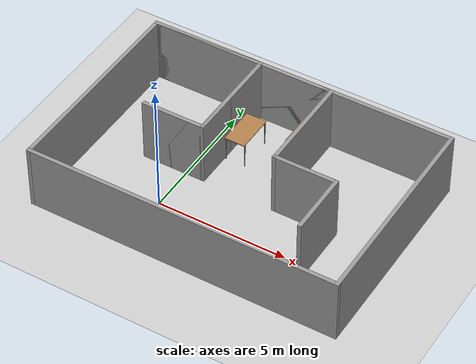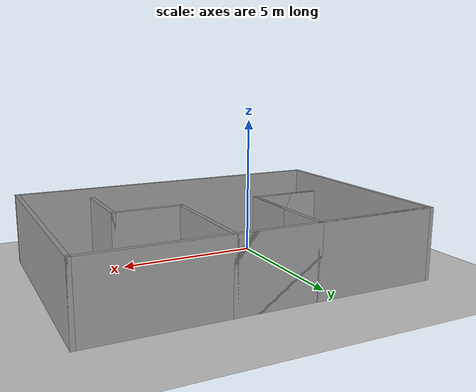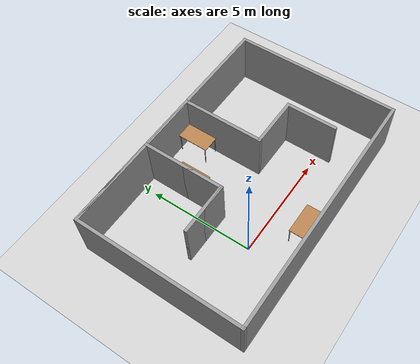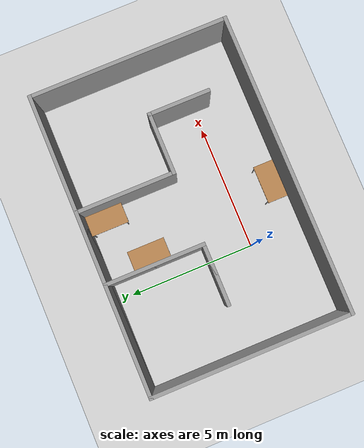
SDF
<sdf version="1.7">
 <world name="default">
  <light name="sun" type="directional">
   <pose>0 0 10 0 -0 0</pose>
   <diffuse>0.8 0.8 0.8 1</diffuse>
   <specular>0.2 0.2 0.2 1</specular>
   <attenuation>
    <range>1000</range>
    <constant>0.9</constant>
    <linear>0.01</linear>
    <quadratic>0.001</quadratic>
   </attenuation>
   <direction>-0.5 0.1 -0.9</direction>
   <spot><inner_angle>0</inner_angle><outer_angle>0</outer_angle><falloff>0</falloff></spot>
  </light>
  <model name="ground_plane">
   <static>1</static>
   <link name="link">
    <collision name="collision">
     <geometry><plane><normal>0 0 1</normal><size>100 100</size></plane></geometry>
     <surface>
      <contact><collide_bitmask>65535</collide_bitmask></contact>
      <friction><ode><mu>100</mu><mu2>50</mu2></ode></friction>
     </surface>
    </collision>
    <visual name="visual">
     <cast_shadows>0</cast_shadows>
     <geometry><plane><normal>0 0 1</normal><size>100 100</size></plane></geometry>
     <material>
      <script><uri>file://media/materials/scripts/gazebo.material</uri><name>Gazebo/Grey</name></script>
     </material>
    </visual>
   </link>
  </model>
  <gravity>0 0 -9.8</gravity>
  <magnetic_field>6e-06 2.3e-05 -4.2e-05</magnetic_field>
  <atmosphere type="adiabatic"/>
  <physics type="ode">
   <max_step_size>0.001</max_step_size>
   <real_time_factor>1</real_time_factor>
   <real_time_update_rate>1000</real_time_update_rate>
  </physics>
  <scene><ambient>0.4 0.4 0.4 1</ambient><background>0.7 0.7 0.7 1</background><shadows>1</shadows></scene>
  <audio><device>default</device></audio>
  <spherical_coordinates>
   <surface_model>EARTH_WGS84</surface_model>
   <latitude_deg>0</latitude_deg>
   <longitude_deg>0</longitude_deg>
   <elevation>0</elevation>
   <heading_deg>0</heading_deg>
  </spherical_coordinates>
  <model name="home">
   <pose>2.25 2.25 0 0 -0 0</pose>
   <link name="Wall_10">
    <collision name="Wall_10_Collision">
     <geometry><box><size>12 0.15 2.5</size></box></geometry>
     <pose>0 0 1.25 0 -0 0</pose>
    </collision>
    <visual name="Wall_10_Visual">
     <pose>0 0 1.25 0 -0 0</pose>
     <geometry><box><size>12 0.15 2.5</size></box></geometry>
     <material>
      <script><uri>file://media/materials/scripts/gazebo.material</uri><name>Gazebo/Grey</name></script>
      <ambient>1 1 1 1</ambient>
     </material>
     <meta><layer>0</layer></meta>
    </visual>
    <pose>0 3.3875 0 0 -0 0</pose>
   </link>
   <link name="Wall_11">
    <collision name="Wall_11_Collision">
     <geometry><box><size>8 0.15 2.5</size></box></geometry>
     <pose>0 0 1.25 0 -0 0</pose>
    </collision>
    <visual name="Wall_11_Visual">
     <pose>0 0 1.25 0 -0 0</pose>
     <geometry><box><size>8 0.15 2.5</size></box></geometry>
     <material>
      <script><uri>file://media/materials/scripts/gazebo.material</uri><name>Gazebo/Grey</name></script>
      <ambient>1 1 1 1</ambient>
     </material>
     <meta><layer>0</layer></meta>
    </visual>
    <pose>5.925 -0.537499 0 0 -0 -1.5708</pose>
   </link>
   <link name="Wall_12">
    <collision name="Wall_12_Collision">
     <geometry><box><size>12 0.15 2.5</size></box></geometry>
     <pose>0 0 1.25 0 -0 0</pose>
    </collision>
    <visual name="Wall_12_Visual">
     <pose>0 0 1.25 0 -0 0</pose>
     <geometry><box><size>12 0.15 2.5</size></box></geometry>
     <material>
      <script><uri>file://media/materials/scripts/gazebo.material</uri><name>Gazebo/Grey</name></script>
      <ambient>1 1 1 1</ambient>
     </material>
     <meta><layer>0</layer></meta>
    </visual>
    <pose>0 -4.4625 0 0 -0 3.14159</pose>
   </link>
   <link name="Wall_13">
    <collision name="Wall_13_Collision">
     <geometry><box><size>8 0.15 2.5</size></box></geometry>
     <pose>0 0 1.25 0 -0 0</pose>
    </collision>
    <visual name="Wall_13_Visual">
     <pose>0 0 1.25 0 -0 0</pose>
     <geometry><box><size>8 0.15 2.5</size></box></geometry>
     <material>
      <script><uri>file://media/materials/scripts/gazebo.material</uri><name>Gazebo/Grey</name></script>
      <ambient>1 1 1 1</ambient>
     </material>
     <meta><layer>0</layer></meta>
    </visual>
    <pose>-5.925 -0.537499 0 0 -0 1.5708</pose>
   </link>
   <link name="Wall_14">
    <collision name="Wall_14_Collision">
     <geometry><box><size>4.5 0.15 2.5</size></box></geometry>
     <pose>0 0 1.25 0 -0 0</pose>
    </collision>
    <visual name="Wall_14_Visual">
     <pose>0 0 1.25 0 -0 0</pose>
     <geometry><box><size>4.5 0.15 2.5</size></box></geometry>
     <material>
      <script><uri>file://media/materials/scripts/gazebo.material</uri><name>Gazebo/Grey</name></script>
      <ambient>1 1 1 1</ambient>
     </material>
     <meta><layer>0</layer></meta>
    </visual>
    <pose>-3.75 3.3875 0 0 -0 0</pose>
   </link>
   <link name="Wall_15">
    <collision name="Wall_15_Collision">
     <geometry><box><size>4 0.15 2.5</size></box></geometry>
     <pose>0 0 1.25 0 -0 0</pose>
    </collision>
    <visual name="Wall_15_Visual">
     <pose>0 0 1.25 0 -0 0</pose>
     <geometry><box><size>4 0.15 2.5</size></box></geometry>
     <material>
      <script><uri>file://media/materials/scripts/gazebo.material</uri><name>Gazebo/Grey</name></script>
      <ambient>1 1 1 1</ambient>
     </material>
     <meta><layer>0</layer></meta>
    </visual>
    <pose>-1.575 1.4625 0 0 -0 -1.5708</pose>
   </link>
   <link name="Wall_16">
    <collision name="Wall_16_Collision">
     <geometry><box><size>2.5 0.15 2.5</size></box></geometry>
     <pose>0 0 1.25 0 -0 0</pose>
    </collision>
    <visual name="Wall_16_Visual">
     <pose>0 0 1.25 0 -0 0</pose>
     <geometry><box><size>2.5 0.15 2.5</size></box></geometry>
     <material>
      <script><uri>file://media/materials/scripts/gazebo.material</uri><name>Gazebo/Grey</name></script>
      <ambient>1 1 1 1</ambient>
     </material>
     <meta><layer>0</layer></meta>
    </visual>
    <pose>-2.75 -0.4625 0 0 -0 3.14159</pose>
   </link>
   <link name="Wall_17">
    <collision name="Wall_17_Collision">
     <geometry><box><size>2.5 0.15 2.5</size></box></geometry>
     <pose>0 0 1.25 0 -0 0</pose>
    </collision>
    <visual name="Wall_17_Visual">
     <pose>0 0 1.25 0 -0 0</pose>
     <geometry><box><size>2.5 0.15 2.5</size></box></geometry>
     <material>
      <script><uri>file://media/materials/scripts/gazebo.material</uri><name>Gazebo/Grey</name></script>
      <ambient>1 1 1 1</ambient>
     </material>
     <meta><layer>0</layer></meta>
    </visual>
    <pose>-2.75 -0.4625 0 0 -0 0</pose>
   </link>
   <link name="Wall_18">
    <collision name="Wall_18_Collision">
     <geometry><box><size>4 0.15 2.5</size></box></geometry>
     <pose>0 0 1.25 0 -0 0</pose>
    </collision>
    <visual name="Wall_18_Visual">
     <pose>0 0 1.25 0 -0 0</pose>
     <geometry><box><size>4 0.15 2.5</size></box></geometry>
     <material>
      <script><uri>file://media/materials/scripts/gazebo.material</uri><name>Gazebo/Grey</name></script>
      <ambient>1 1 1 1</ambient>
     </material>
     <meta><layer>0</layer></meta>
    </visual>
    <pose>-1.575 1.4625 0 0 -0 1.5708</pose>
   </link>
   <link name="Wall_19">
    <collision name="Wall_19_Collision">
     <geometry><box><size>3 0.15 2.5</size></box></geometry>
     <pose>0 0 1.25 0 -0 0</pose>
    </collision>
    <visual name="Wall_19_Visual">
     <pose>0 0 1.25 0 -0 0</pose>
     <geometry><box><size>3 0.15 2.5</size></box></geometry>
     <material>
      <script><uri>file://media/materials/scripts/gazebo.material</uri><name>Gazebo/Grey</name></script>
      <ambient>1 1 1 1</ambient>
     </material>
     <meta><layer>0</layer></meta>
    </visual>
    <pose>-0.15 3.3875 0 0 -0 0</pose>
   </link>
   <link name="Wall_20">
    <collision name="Wall_20_Collision">
     <geometry><box><size>4 0.15 2.5</size></box></geometry>
     <pose>0 0 1.25 0 -0 0</pose>
    </collision>
    <visual name="Wall_20_Visual">
     <pose>0 0 1.25 0 -0 0</pose>
     <geometry><box><size>4 0.15 2.5</size></box></geometry>
     <material>
      <script><uri>file://media/materials/scripts/gazebo.material</uri><name>Gazebo/Grey</name></script>
      <ambient>1 1 1 1</ambient>
     </material>
     <meta><layer>0</layer></meta>
    </visual>
    <pose>1.275 1.4625 0 0 -0 -1.5708</pose>
   </link>
   <link name="Wall_21">
    <collision name="Wall_21_Collision">
     <geometry><box><size>2.5 0.15 2.5</size></box></geometry>
     <pose>0 0 1.25 0 -0 0</pose>
    </collision>
    <visual name="Wall_21_Visual">
     <pose>0 0 1.25 0 -0 0</pose>
     <geometry><box><size>2.5 0.15 2.5</size></box></geometry>
     <material>
      <script><uri>file://media/materials/scripts/gazebo.material</uri><name>Gazebo/Grey</name></script>
      <ambient>1 1 1 1</ambient>
     </material>
     <meta><layer>0</layer></meta>
    </visual>
    <pose>2.45 -0.4625 0 0 -0 0</pose>
   </link>
   <link name="Wall_22">
    <collision name="Wall_22_Collision">
     <geometry><box><size>2.5 0.15 2.5</size></box></geometry>
     <pose>0 0 1.25 0 -0 0</pose>
    </collision>
    <visual name="Wall_22_Visual">
     <pose>0 0 1.25 0 -0 0</pose>
     <geometry><box><size>2.5 0.15 2.5</size></box></geometry>
     <material>
      <script><uri>file://media/materials/scripts/gazebo.material</uri><name>Gazebo/Grey</name></script>
      <ambient>1 1 1 1</ambient>
     </material>
     <meta><layer>0</layer></meta>
    </visual>
    <pose>3.625 -1.6375 0 0 -0 -1.5708</pose>
   </link>
   <static>1</static>
  </model>
  <model name="table">
   <static>1</static>
   <link name="link">
    <collision name="surface">
     <pose>0 0 1 0 -0 0</pose>
     <geometry><box><size>1.5 0.8 0.03</size></box></geometry>
     <surface><friction><ode><mu>0.6</mu><mu2>0.6</mu2></ode></friction></surface>
    </collision>
    <visual name="visual1">
     <pose>0 0 1 0 -0 0</pose>
     <geometry><box><size>1.5 0.8 0.03</size></box></geometry>
     <material>
      <script><uri>file://media/materials/scripts/gazebo.material</uri><name>Gazebo/Wood</name></script>
     </material>
    </visual>
    <collision name="front_left_leg">
     <pose>0.68 0.38 0.5 0 -0 0</pose>
     <geometry><cylinder><radius>0.02</radius><length>1</length></cylinder></geometry>
    </collision>
    <visual name="front_left_leg">
     <pose>0.68 0.38 0.5 0 -0 0</pose>
     <geometry><cylinder><radius>0.02</radius><length>1</length></cylinder></geometry>
     <material>
      <script><uri>file://media/materials/scripts/gazebo.material</uri><name>Gazebo/Grey</name></script>
     </material>
    </visual>
    <collision name="front_right_leg">
     <pose>0.68 -0.38 0.5 0 -0 0</pose>
     <geometry><cylinder><radius>0.02</radius><length>1</length></cylinder></geometry>
    </collision>
    <visual name="front_right_leg">
     <pose>0.68 -0.38 0.5 0 -0 0</pose>
     <geometry><cylinder><radius>0.02</radius><length>1</length></cylinder></geometry>
     <material>
      <script><uri>file://media/materials/scripts/gazebo.material</uri><name>Gazebo/Grey</name></script>
     </material>
    </visual>
    <collision name="back_right_leg">
     <pose>-0.68 -0.38 0.5 0 -0 0</pose>
     <geometry><cylinder><radius>0.02</radius><length>1</length></cylinder></geometry>
    </collision>
    <visual name="back_right_leg">
     <pose>-0.68 -0.38 0.5 0 -0 0</pose>
     <geometry><cylinder><radius>0.02</radius><length>1</length></cylinder></geometry>
     <material>
      <script><uri>file://media/materials/scripts/gazebo.material</uri><name>Gazebo/Grey</name></script>
     </material>
    </visual>
    <collision name="back_left_leg">
     <pose>-0.68 0.38 0.5 0 -0 0</pose>
     <geometry><cylinder><radius>0.02</radius><length>1</length></cylinder></geometry>
    </collision>
    <visual name="back_left_leg">
     <pose>-0.68 0.38 0.5 0 -0 0</pose>
     <geometry><cylinder><radius>0.02</radius><length>1</length></cylinder></geometry>
     <material>
      <script><uri>file://media/materials/scripts/gazebo.material</uri><name>Gazebo/Grey</name></script>
     </material>
    </visual>
   </link>
   <pose>1.98842 -1.57904 0 0 -0 0</pose>
  </model>
  <model name="table_0">
   <static>1</static>
   <link name="link">
    <collision name="surface">
     <pose>0 0 1 0 -0 0</pose>
     <geometry><box><size>1.5 0.8 0.03</size></box></geometry>
     <surface><friction><ode><mu>0.6</mu><mu2>0.6</mu2></ode></friction></surface>
    </collision>
    <visual name="visual1">
     <pose>0 0 1 0 -0 0</pose>
     <geometry><box><size>1.5 0.8 0.03</size></box></geometry>
     <material>
      <script><uri>file://media/materials/scripts/gazebo.material</uri><name>Gazebo/Wood</name></script>
     </material>
    </visual>
    <collision name="front_left_leg">
     <pose>0.68 0.38 0.5 0 -0 0</pose>
     <geometry><cylinder><radius>0.02</radius><length>1</length></cylinder></geometry>
    </collision>
    <visual name="front_left_leg">
     <pose>0.68 0.38 0.5 0 -0 0</pose>
     <geometry><cylinder><radius>0.02</radius><length>1</length></cylinder></geometry>
     <material>
      <script><uri>file://media/materials/scripts/gazebo.material</uri><name>Gazebo/Grey</name></script>
     </material>
    </visual>
    <collision name="front_right_leg">
     <pose>0.68 -0.38 0.5 0 -0 0</pose>
     <geometry><cylinder><radius>0.02</radius><length>1</length></cylinder></geometry>
    </collision>
    <visual name="front_right_leg">
     <pose>0.68 -0.38 0.5 0 -0 0</pose>
     <geometry><cylinder><radius>0.02</radius><length>1</length></cylinder></geometry>
     <material>
      <script><uri>file://media/materials/scripts/gazebo.material</uri><name>Gazebo/Grey</name></script>
     </material>
    </visual>
    <collision name="back_right_leg">
     <pose>-0.68 -0.38 0.5 0 -0 0</pose>
     <geometry><cylinder><radius>0.02</radius><length>1</length></cylinder></geometry>
    </collision>
    <visual name="back_right_leg">
     <pose>-0.68 -0.38 0.5 0 -0 0</pose>
     <geometry><cylinder><radius>0.02</radius><length>1</length></cylinder></geometry>
     <material>
      <script><uri>file://media/materials/scripts/gazebo.material</uri><name>Gazebo/Grey</name></script>
     </material>
    </visual>
    <collision name="back_left_leg">
     <pose>-0.68 0.38 0.5 0 -0 0</pose>
     <geometry><cylinder><radius>0.02</radius><length>1</length></cylinder></geometry>
    </collision>
    <visual name="back_left_leg">
     <pose>-0.68 0.38 0.5 0 -0 0</pose>
     <geometry><cylinder><radius>0.02</radius><length>1</length></cylinder></geometry>
     <material>
      <script><uri>file://media/materials/scripts/gazebo.material</uri><name>Gazebo/Grey</name></script>
     </material>
    </visual>
   </link>
   <pose>1.17 3.8 0 0 -0 1.57</pose>
  </model>
  <model name="table_1">
   <static>1</static>
   <link name="link">
    <collision name="surface">
     <pose>0 0 1 0 -0 0</pose>
     <geometry><box><size>1.5 0.8 0.03</size></box></geometry>
     <surface><friction><ode><mu>0.6</mu><mu2>0.6</mu2></ode></friction></surface>
    </collision>
    <visual name="visual1">
     <pose>0 0 1 0 -0 0</pose>
     <geometry><box><size>1.5 0.8 0.03</size></box></geometry>
     <material>
      <script><uri>file://media/materials/scripts/gazebo.material</uri><name>Gazebo/Wood</name></script>
     </material>
    </visual>
    <collision name="front_left_leg">
     <pose>0.68 0.38 0.5 0 -0 0</pose>
     <geometry><cylinder><radius>0.02</radius><length>1</length></cylinder></geometry>
    </collision>
    <visual name="front_left_leg">
     <pose>0.68 0.38 0.5 0 -0 0</pose>
     <geometry><cylinder><radius>0.02</radius><length>1</length></cylinder></geometry>
     <material>
      <script><uri>file://media/materials/scripts/gazebo.material</uri><name>Gazebo/Grey</name></script>
     </material>
    </visual>
    <collision name="front_right_leg">
     <pose>0.68 -0.38 0.5 0 -0 0</pose>
     <geometry><cylinder><radius>0.02</radius><length>1</length></cylinder></geometry>
    </collision>
    <visual name="front_right_leg">
     <pose>0.68 -0.38 0.5 0 -0 0</pose>
     <geometry><cylinder><radius>0.02</radius><length>1</length></cylinder></geometry>
     <material>
      <script><uri>file://media/materials/scripts/gazebo.material</uri><name>Gazebo/Grey</name></script>
     </material>
    </visual>
    <collision name="back_right_leg">
     <pose>-0.68 -0.38 0.5 0 -0 0</pose>
     <geometry><cylinder><radius>0.02</radius><length>1</length></cylinder></geometry>
    </collision>
    <visual name="back_right_leg">
     <pose>-0.68 -0.38 0.5 0 -0 0</pose>
     <geometry><cylinder><radius>0.02</radius><length>1</length></cylinder></geometry>
     <material>
      <script><uri>file://media/materials/scripts/gazebo.material</uri><name>Gazebo/Grey</name></script>
     </material>
    </visual>
    <collision name="back_left_leg">
     <pose>-0.68 0.38 0.5 0 -0 0</pose>
     <geometry><cylinder><radius>0.02</radius><length>1</length></cylinder></geometry>
    </collision>
    <visual name="back_left_leg">
     <pose>-0.68 0.38 0.5 0 -0 0</pose>
     <geometry><cylinder><radius>0.02</radius><length>1</length></cylinder></geometry>
     <material>
      <script><uri>file://media/materials/scripts/gazebo.material</uri><name>Gazebo/Grey</name></script>
     </material>
    </visual>
   </link>
   <pose>3.03 4.8 0 0 -0 1.57</pose>
  </model>
 </world>
</sdf>
